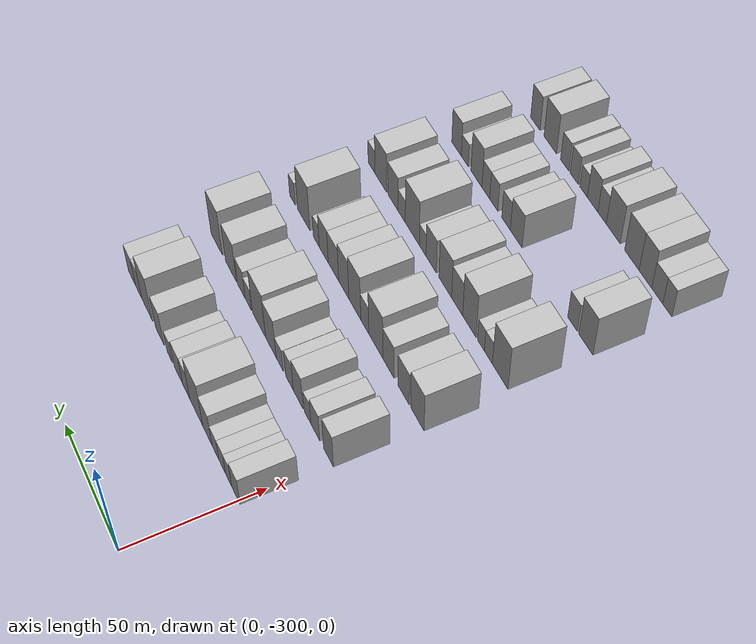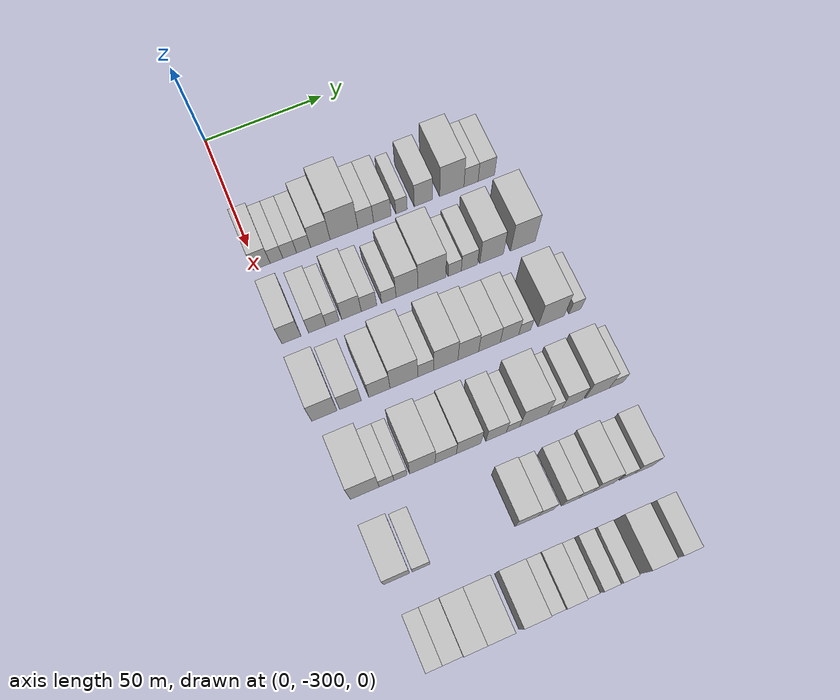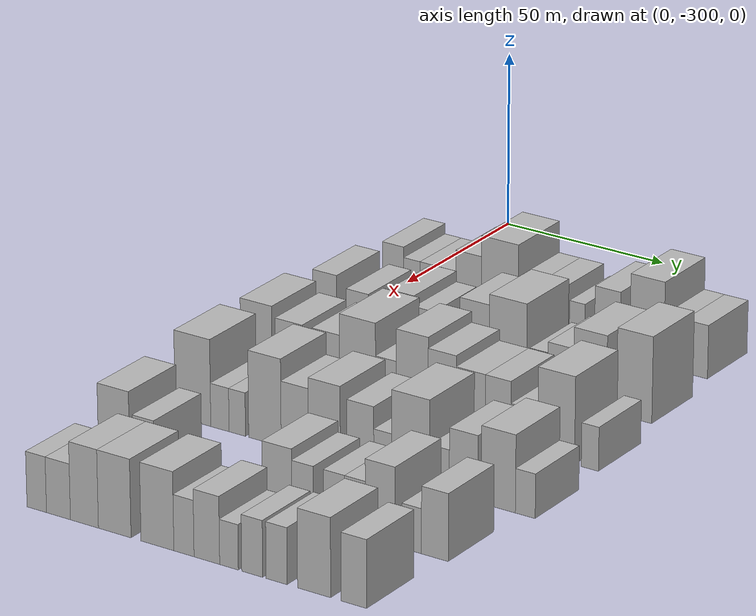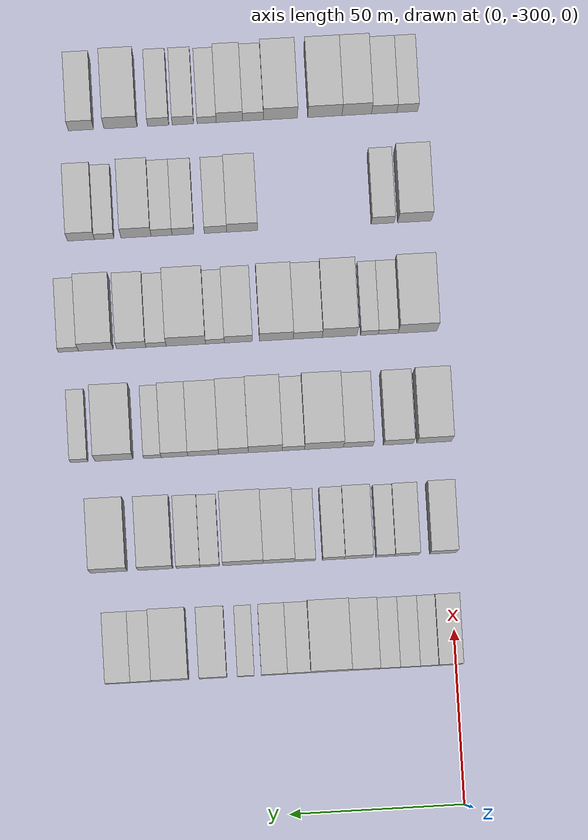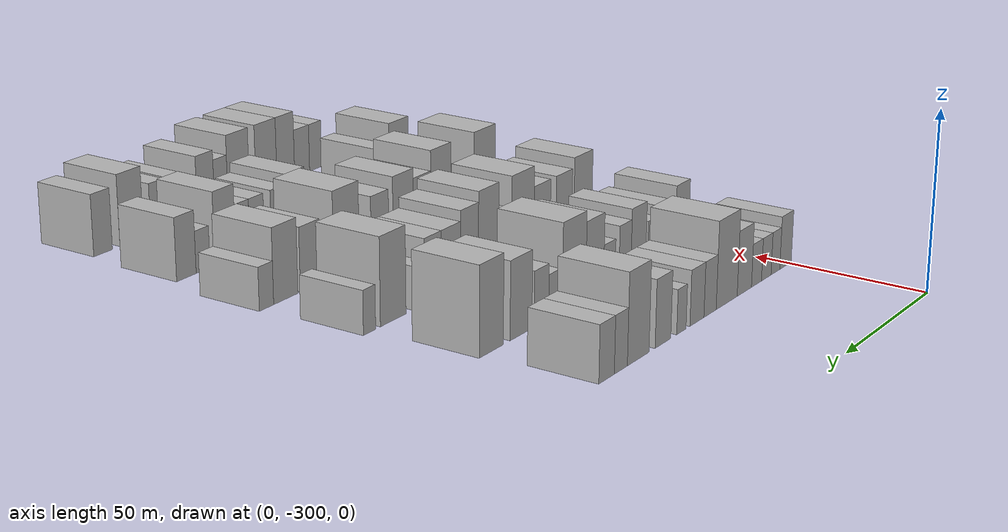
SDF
<sdf version="1.6">
 <world name="default">
  <model name="building_23">
   <static>1</static>
   <pose>50.0000 -297.9620 0 0.000000 0.000000 0.000000</pose>
   <link name="link">
    <pose>0 0 7.50 0 0 0</pose>
    <collision name="collision"><geometry><box><size>20.0000 6.9274 15.0000</size></box></geometry></collision>
    <visual name="visual">
     <cast_shadows>0</cast_shadows>
     <geometry><box><size>20.0000 6.9274 15.0000</size></box></geometry>
     <material>
      <script>
       <uri>model://HANNAS_wall/materials/scripts</uri>
       <uri>model://HANNAS_wall/materials/textures</uri>
       <name>vrc/HANNAS_wall</name>
      </script>
     </material>
    </visual>
   </link>
  </model>
  <model name="building_24">
   <static>1</static>
   <pose>50.0000 -291.8963 0 0.000000 0.000000 0.000000</pose>
   <link name="link">
    <pose>0 0 6.00 0 0 0</pose>
    <collision name="collision"><geometry><box><size>20.0000 5.2041 12.0000</size></box></geometry></collision>
    <visual name="visual">
     <cast_shadows>0</cast_shadows>
     <geometry><box><size>20.0000 5.2041 12.0000</size></box></geometry>
     <material>
      <script>
       <uri>model://HANNAS_wall/materials/scripts</uri>
       <uri>model://HANNAS_wall/materials/textures</uri>
       <name>vrc/HANNAS_wall</name>
      </script>
     </material>
    </visual>
   </link>
  </model>
  <model name="building_25">
   <static>1</static>
   <pose>50.0000 -286.4737 0 0.000000 0.000000 0.000000</pose>
   <link name="link">
    <pose>0 0 6.00 0 0 0</pose>
    <collision name="collision"><geometry><box><size>20.0000 5.6412 12.0000</size></box></geometry></collision>
    <visual name="visual">
     <cast_shadows>0</cast_shadows>
     <geometry><box><size>20.0000 5.6412 12.0000</size></box></geometry>
     <material>
      <script>
       <uri>model://HANNAS_wall/materials/scripts</uri>
       <uri>model://HANNAS_wall/materials/textures</uri>
       <name>vrc/HANNAS_wall</name>
      </script>
     </material>
    </visual>
   </link>
  </model>
  <model name="building_26">
   <static>1</static>
   <pose>50.0000 -280.7566 0 0.000000 0.000000 0.000000</pose>
   <link name="link">
    <pose>0 0 6.00 0 0 0</pose>
    <collision name="collision"><geometry><box><size>20.0000 5.7930 12.0000</size></box></geometry></collision>
    <visual name="visual">
     <cast_shadows>0</cast_shadows>
     <geometry><box><size>20.0000 5.7930 12.0000</size></box></geometry>
     <material>
      <script>
       <uri>model://HANNAS_wall/materials/scripts</uri>
       <uri>model://HANNAS_wall/materials/textures</uri>
       <name>vrc/HANNAS_wall</name>
      </script>
     </material>
    </visual>
   </link>
  </model>
  <model name="building_27">
   <static>1</static>
   <pose>50.0000 -273.8065 0 0.000000 0.000000 0.000000</pose>
   <link name="link">
    <pose>0 0 9.00 0 0 0</pose>
    <collision name="collision"><geometry><box><size>20.0000 8.1072 18.0000</size></box></geometry></collision>
    <visual name="visual">
     <cast_shadows>0</cast_shadows>
     <geometry><box><size>20.0000 8.1072 18.0000</size></box></geometry>
     <material>
      <script>
       <uri>model://HANNAS_wall/materials/scripts</uri>
       <uri>model://HANNAS_wall/materials/textures</uri>
       <name>vrc/HANNAS_wall</name>
      </script>
     </material>
    </visual>
   </link>
  </model>
  <model name="building_28">
   <static>1</static>
   <pose>50.0000 -263.9449 0 0.000000 0.000000 0.000000</pose>
   <link name="link">
    <pose>0 0 12.00 0 0 0</pose>
    <collision name="collision"><geometry><box><size>20.0000 11.6159 24.0000</size></box></geometry></collision>
    <visual name="visual">
     <cast_shadows>0</cast_shadows>
     <geometry><box><size>20.0000 11.6159 24.0000</size></box></geometry>
     <material>
      <script>
       <uri>model://HANNAS_wall/materials/scripts</uri>
       <uri>model://HANNAS_wall/materials/textures</uri>
       <name>vrc/HANNAS_wall</name>
      </script>
     </material>
    </visual>
   </link>
  </model>
  <model name="building_29">
   <static>1</static>
   <pose>50.0000 -254.8474 0 0.000000 0.000000 0.000000</pose>
   <link name="link">
    <pose>0 0 7.50 0 0 0</pose>
    <collision name="collision"><geometry><box><size>20.0000 6.5791 15.0000</size></box></geometry></collision>
    <visual name="visual">
     <cast_shadows>0</cast_shadows>
     <geometry><box><size>20.0000 6.5791 15.0000</size></box></geometry>
     <material>
      <script>
       <uri>model://HANNAS_wall/materials/scripts</uri>
       <uri>model://HANNAS_wall/materials/textures</uri>
       <name>vrc/HANNAS_wall</name>
      </script>
     </material>
    </visual>
   </link>
  </model>
  <model name="building_30">
   <static>1</static>
   <pose>50.0000 -247.8670 0 0.000000 0.000000 0.000000</pose>
   <link name="link">
    <pose>0 0 7.50 0 0 0</pose>
    <collision name="collision"><geometry><box><size>20.0000 7.3816 15.0000</size></box></geometry></collision>
    <visual name="visual">
     <cast_shadows>0</cast_shadows>
     <geometry><box><size>20.0000 7.3816 15.0000</size></box></geometry>
     <material>
      <script>
       <uri>model://HANNAS_wall/materials/scripts</uri>
       <uri>model://HANNAS_wall/materials/textures</uri>
       <name>vrc/HANNAS_wall</name>
      </script>
     </material>
    </visual>
   </link>
  </model>
  <model name="building_31">
   <static>1</static>
   <pose>50.0000 -239.7686 0 0.000000 0.000000 0.000000</pose>
   <link name="link">
    <pose>0 0 6.00 0 0 0</pose>
    <collision name="collision"><geometry><box><size>20.0000 4.8153 12.0000</size></box></geometry></collision>
    <visual name="visual">
     <cast_shadows>0</cast_shadows>
     <geometry><box><size>20.0000 4.8153 12.0000</size></box></geometry>
     <material>
      <script>
       <uri>model://HANNAS_wall/materials/scripts</uri>
       <uri>model://HANNAS_wall/materials/textures</uri>
       <name>vrc/HANNAS_wall</name>
      </script>
     </material>
    </visual>
   </link>
  </model>
  <model name="building_32">
   <static>1</static>
   <pose>50.0000 -230.4440 0 0.000000 0.000000 0.000000</pose>
   <link name="link">
    <pose>0 0 9.00 0 0 0</pose>
    <collision name="collision"><geometry><box><size>20.0000 7.8339 18.0000</size></box></geometry></collision>
    <visual name="visual">
     <cast_shadows>0</cast_shadows>
     <geometry><box><size>20.0000 7.8339 18.0000</size></box></geometry>
     <material>
      <script>
       <uri>model://HANNAS_wall/materials/scripts</uri>
       <uri>model://HANNAS_wall/materials/textures</uri>
       <name>vrc/HANNAS_wall</name>
      </script>
     </material>
    </visual>
   </link>
  </model>
  <model name="building_33">
   <static>1</static>
   <pose>50.0000 -218.3248 0 0.000000 0.000000 0.000000</pose>
   <link name="link">
    <pose>0 0 12.00 0 0 0</pose>
    <collision name="collision"><geometry><box><size>20.0000 10.4044 24.0000</size></box></geometry></collision>
    <visual name="visual">
     <cast_shadows>0</cast_shadows>
     <geometry><box><size>20.0000 10.4044 24.0000</size></box></geometry>
     <material>
      <script>
       <uri>model://HANNAS_wall/materials/scripts</uri>
       <uri>model://HANNAS_wall/materials/textures</uri>
       <name>vrc/HANNAS_wall</name>
      </script>
     </material>
    </visual>
   </link>
  </model>
  <model name="building_34">
   <static>1</static>
   <pose>50.0000 -210.0626 0 0.000000 0.000000 0.000000</pose>
   <link name="link">
    <pose>0 0 7.50 0 0 0</pose>
    <collision name="collision"><geometry><box><size>20.0000 6.1201 15.0000</size></box></geometry></collision>
    <visual name="visual">
     <cast_shadows>0</cast_shadows>
     <geometry><box><size>20.0000 6.1201 15.0000</size></box></geometry>
     <material>
      <script>
       <uri>model://HANNAS_wall/materials/scripts</uri>
       <uri>model://HANNAS_wall/materials/textures</uri>
       <name>vrc/HANNAS_wall</name>
      </script>
     </material>
    </visual>
   </link>
  </model>
  <model name="building_35">
   <static>1</static>
   <pose>50.0000 -203.4293 0 0.000000 0.000000 0.000000</pose>
   <link name="link">
    <pose>0 0 7.50 0 0 0</pose>
    <collision name="collision"><geometry><box><size>20.0000 7.1464 15.0000</size></box></geometry></collision>
    <visual name="visual">
     <cast_shadows>0</cast_shadows>
     <geometry><box><size>20.0000 7.1464 15.0000</size></box></geometry>
     <material>
      <script>
       <uri>model://HANNAS_wall/materials/scripts</uri>
       <uri>model://HANNAS_wall/materials/textures</uri>
       <name>vrc/HANNAS_wall</name>
      </script>
     </material>
    </visual>
   </link>
  </model>
  <model name="building_143">
   <static>1</static>
   <pose>82.0000 -298.0076 0 0.000000 0.000000 0.000000</pose>
   <link name="link">
    <pose>0 0 9.00 0 0 0</pose>
    <collision name="collision"><geometry><box><size>20.0000 7.6925 18.0000</size></box></geometry></collision>
    <visual name="visual">
     <cast_shadows>0</cast_shadows>
     <geometry><box><size>20.0000 7.6925 18.0000</size></box></geometry>
     <material>
      <script>
       <uri>model://HANNAS_wall/materials/scripts</uri>
       <uri>model://HANNAS_wall/materials/textures</uri>
       <name>vrc/HANNAS_wall</name>
      </script>
     </material>
    </visual>
   </link>
  </model>
  <model name="building_144">
   <static>1</static>
   <pose>82.0000 -287.6262 0 0.000000 0.000000 0.000000</pose>
   <link name="link">
    <pose>0 0 7.50 0 0 0</pose>
    <collision name="collision"><geometry><box><size>20.0000 7.0702 15.0000</size></box></geometry></collision>
    <visual name="visual">
     <cast_shadows>0</cast_shadows>
     <geometry><box><size>20.0000 7.0702 15.0000</size></box></geometry>
     <material>
      <script>
       <uri>model://HANNAS_wall/materials/scripts</uri>
       <uri>model://HANNAS_wall/materials/textures</uri>
       <name>vrc/HANNAS_wall</name>
      </script>
     </material>
    </visual>
   </link>
  </model>
  <model name="building_145">
   <static>1</static>
   <pose>82.0000 -281.4189 0 0.000000 0.000000 0.000000</pose>
   <link name="link">
    <pose>0 0 6.00 0 0 0</pose>
    <collision name="collision"><geometry><box><size>20.0000 5.3445 12.0000</size></box></geometry></collision>
    <visual name="visual">
     <cast_shadows>0</cast_shadows>
     <geometry><box><size>20.0000 5.3445 12.0000</size></box></geometry>
     <material>
      <script>
       <uri>model://HANNAS_wall/materials/scripts</uri>
       <uri>model://HANNAS_wall/materials/textures</uri>
       <name>vrc/HANNAS_wall</name>
      </script>
     </material>
    </visual>
   </link>
  </model>
  <model name="building_146">
   <static>1</static>
   <pose>82.0000 -273.7589 0 0.000000 0.000000 0.000000</pose>
   <link name="link">
    <pose>0 0 9.00 0 0 0</pose>
    <collision name="collision"><geometry><box><size>20.0000 7.9755 18.0000</size></box></geometry></collision>
    <visual name="visual">
     <cast_shadows>0</cast_shadows>
     <geometry><box><size>20.0000 7.9755 18.0000</size></box></geometry>
     <material>
      <script>
       <uri>model://HANNAS_wall/materials/scripts</uri>
       <uri>model://HANNAS_wall/materials/textures</uri>
       <name>vrc/HANNAS_wall</name>
      </script>
     </material>
    </visual>
   </link>
  </model>
  <model name="building_147">
   <static>1</static>
   <pose>82.0000 -266.6083 0 0.000000 0.000000 0.000000</pose>
   <link name="link">
    <pose>0 0 7.50 0 0 0</pose>
    <collision name="collision"><geometry><box><size>20.0000 6.3256 15.0000</size></box></geometry></collision>
    <visual name="visual">
     <cast_shadows>0</cast_shadows>
     <geometry><box><size>20.0000 6.3256 15.0000</size></box></geometry>
     <material>
      <script>
       <uri>model://HANNAS_wall/materials/scripts</uri>
       <uri>model://HANNAS_wall/materials/textures</uri>
       <name>vrc/HANNAS_wall</name>
      </script>
     </material>
    </visual>
   </link>
  </model>
  <model name="building_148">
   <static>1</static>
   <pose>82.0000 -258.4618 0 0.000000 0.000000 0.000000</pose>
   <link name="link">
    <pose>0 0 6.00 0 0 0</pose>
    <collision name="collision"><geometry><box><size>20.0000 5.9676 12.0000</size></box></geometry></collision>
    <visual name="visual">
     <cast_shadows>0</cast_shadows>
     <geometry><box><size>20.0000 5.9676 12.0000</size></box></geometry>
     <material>
      <script>
       <uri>model://HANNAS_wall/materials/scripts</uri>
       <uri>model://HANNAS_wall/materials/textures</uri>
       <name>vrc/HANNAS_wall</name>
      </script>
     </material>
    </visual>
   </link>
  </model>
  <model name="building_149">
   <static>1</static>
   <pose>82.0000 -250.9563 0 0.000000 0.000000 0.000000</pose>
   <link name="link">
    <pose>0 0 10.50 0 0 0</pose>
    <collision name="collision"><geometry><box><size>20.0000 9.0434 21.0000</size></box></geometry></collision>
    <visual name="visual">
     <cast_shadows>0</cast_shadows>
     <geometry><box><size>20.0000 9.0434 21.0000</size></box></geometry>
     <material>
      <script>
       <uri>model://HANNAS_wall/materials/scripts</uri>
       <uri>model://HANNAS_wall/materials/textures</uri>
       <name>vrc/HANNAS_wall</name>
      </script>
     </material>
    </visual>
   </link>
  </model>
  <model name="building_150">
   <static>1</static>
   <pose>82.0000 -240.6890 0 0.000000 0.000000 0.000000</pose>
   <link name="link">
    <pose>0 0 12.00 0 0 0</pose>
    <collision name="collision"><geometry><box><size>20.0000 11.4912 24.0000</size></box></geometry></collision>
    <visual name="visual">
     <cast_shadows>0</cast_shadows>
     <geometry><box><size>20.0000 11.4912 24.0000</size></box></geometry>
     <material>
      <script>
       <uri>model://HANNAS_wall/materials/scripts</uri>
       <uri>model://HANNAS_wall/materials/textures</uri>
       <name>vrc/HANNAS_wall</name>
      </script>
     </material>
    </visual>
   </link>
  </model>
  <model name="building_151">
   <static>1</static>
   <pose>82.0000 -231.1967 0 0.000000 0.000000 0.000000</pose>
   <link name="link">
    <pose>0 0 6.00 0 0 0</pose>
    <collision name="collision"><geometry><box><size>20.0000 5.4934 12.0000</size></box></geometry></collision>
    <visual name="visual">
     <cast_shadows>0</cast_shadows>
     <geometry><box><size>20.0000 5.4934 12.0000</size></box></geometry>
     <material>
      <script>
       <uri>model://HANNAS_wall/materials/scripts</uri>
       <uri>model://HANNAS_wall/materials/textures</uri>
       <name>vrc/HANNAS_wall</name>
      </script>
     </material>
    </visual>
   </link>
  </model>
  <model name="building_152">
   <static>1</static>
   <pose>82.0000 -225.0478 0 0.000000 0.000000 0.000000</pose>
   <link name="link">
    <pose>0 0 7.50 0 0 0</pose>
    <collision name="collision"><geometry><box><size>20.0000 6.8043 15.0000</size></box></geometry></collision>
    <visual name="visual">
     <cast_shadows>0</cast_shadows>
     <geometry><box><size>20.0000 6.8043 15.0000</size></box></geometry>
     <material>
      <script>
       <uri>model://HANNAS_wall/materials/scripts</uri>
       <uri>model://HANNAS_wall/materials/textures</uri>
       <name>vrc/HANNAS_wall</name>
      </script>
     </material>
    </visual>
   </link>
  </model>
  <model name="building_153">
   <static>1</static>
   <pose>82.0000 -215.6510 0 0.000000 0.000000 0.000000</pose>
   <link name="link">
    <pose>0 0 10.50 0 0 0</pose>
    <collision name="collision"><geometry><box><size>20.0000 9.9894 21.0000</size></box></geometry></collision>
    <visual name="visual">
     <cast_shadows>0</cast_shadows>
     <geometry><box><size>20.0000 9.9894 21.0000</size></box></geometry>
     <material>
      <script>
       <uri>model://HANNAS_wall/materials/scripts</uri>
       <uri>model://HANNAS_wall/materials/textures</uri>
       <name>vrc/HANNAS_wall</name>
      </script>
     </material>
    </visual>
   </link>
  </model>
  <model name="building_154">
   <static>1</static>
   <pose>82.0000 -202.3772 0 0.000000 0.000000 0.000000</pose>
   <link name="link">
    <pose>0 0 12.00 0 0 0</pose>
    <collision name="collision"><geometry><box><size>20.0000 10.5583 24.0000</size></box></geometry></collision>
    <visual name="visual">
     <cast_shadows>0</cast_shadows>
     <geometry><box><size>20.0000 10.5583 24.0000</size></box></geometry>
     <material>
      <script>
       <uri>model://HANNAS_wall/materials/scripts</uri>
       <uri>model://HANNAS_wall/materials/textures</uri>
       <name>vrc/HANNAS_wall</name>
      </script>
     </material>
    </visual>
   </link>
  </model>
  <model name="building_268">
   <static>1</static>
   <pose>114.0000 -297.3556 0 0.000000 0.000000 0.000000</pose>
   <link name="link">
    <pose>0 0 10.50 0 0 0</pose>
    <collision name="collision"><geometry><box><size>20.0000 9.9797 21.0000</size></box></geometry></collision>
    <visual name="visual">
     <cast_shadows>0</cast_shadows>
     <geometry><box><size>20.0000 9.9797 21.0000</size></box></geometry>
     <material>
      <script>
       <uri>model://HANNAS_wall/materials/scripts</uri>
       <uri>model://HANNAS_wall/materials/textures</uri>
       <name>vrc/HANNAS_wall</name>
      </script>
     </material>
    </visual>
   </link>
  </model>
  <model name="building_269">
   <static>1</static>
   <pose>114.0000 -287.0951 0 0.000000 0.000000 0.000000</pose>
   <link name="link">
    <pose>0 0 9.00 0 0 0</pose>
    <collision name="collision"><geometry><box><size>20.0000 8.5413 18.0000</size></box></geometry></collision>
    <visual name="visual">
     <cast_shadows>0</cast_shadows>
     <geometry><box><size>20.0000 8.5413 18.0000</size></box></geometry>
     <material>
      <script>
       <uri>model://HANNAS_wall/materials/scripts</uri>
       <uri>model://HANNAS_wall/materials/textures</uri>
       <name>vrc/HANNAS_wall</name>
      </script>
     </material>
    </visual>
   </link>
  </model>
  <model name="building_270">
   <static>1</static>
   <pose>114.0000 -275.5654 0 0.000000 0.000000 0.000000</pose>
   <link name="link">
    <pose>0 0 9.00 0 0 0</pose>
    <collision name="collision"><geometry><box><size>20.0000 8.5182 18.0000</size></box></geometry></collision>
    <visual name="visual">
     <cast_shadows>0</cast_shadows>
     <geometry><box><size>20.0000 8.5182 18.0000</size></box></geometry>
     <material>
      <script>
       <uri>model://HANNAS_wall/materials/scripts</uri>
       <uri>model://HANNAS_wall/materials/textures</uri>
       <name>vrc/HANNAS_wall</name>
      </script>
     </material>
    </visual>
   </link>
  </model>
  <model name="building_271">
   <static>1</static>
   <pose>114.0000 -265.7156 0 0.000000 0.000000 0.000000</pose>
   <link name="link">
    <pose>0 0 12.00 0 0 0</pose>
    <collision name="collision"><geometry><box><size>20.0000 11.1815 24.0000</size></box></geometry></collision>
    <visual name="visual">
     <cast_shadows>0</cast_shadows>
     <geometry><box><size>20.0000 11.1815 24.0000</size></box></geometry>
     <material>
      <script>
       <uri>model://HANNAS_wall/materials/scripts</uri>
       <uri>model://HANNAS_wall/materials/textures</uri>
       <name>vrc/HANNAS_wall</name>
      </script>
     </material>
    </visual>
   </link>
  </model>
  <model name="building_272">
   <static>1</static>
   <pose>114.0000 -256.9331 0 0.000000 0.000000 0.000000</pose>
   <link name="link">
    <pose>0 0 7.50 0 0 0</pose>
    <collision name="collision"><geometry><box><size>20.0000 6.3836 15.0000</size></box></geometry></collision>
    <visual name="visual">
     <cast_shadows>0</cast_shadows>
     <geometry><box><size>20.0000 6.3836 15.0000</size></box></geometry>
     <material>
      <script>
       <uri>model://HANNAS_wall/materials/scripts</uri>
       <uri>model://HANNAS_wall/materials/textures</uri>
       <name>vrc/HANNAS_wall</name>
      </script>
     </material>
    </visual>
   </link>
  </model>
  <model name="building_273">
   <static>1</static>
   <pose>114.0000 -248.8616 0 0.000000 0.000000 0.000000</pose>
   <link name="link">
    <pose>0 0 12.00 0 0 0</pose>
    <collision name="collision"><geometry><box><size>20.0000 9.7594 24.0000</size></box></geometry></collision>
    <visual name="visual">
     <cast_shadows>0</cast_shadows>
     <geometry><box><size>20.0000 9.7594 24.0000</size></box></geometry>
     <material>
      <script>
       <uri>model://HANNAS_wall/materials/scripts</uri>
       <uri>model://HANNAS_wall/materials/textures</uri>
       <name>vrc/HANNAS_wall</name>
      </script>
     </material>
    </visual>
   </link>
  </model>
  <model name="building_274">
   <static>1</static>
   <pose>114.0000 -239.7584 0 0.000000 0.000000 0.000000</pose>
   <link name="link">
    <pose>0 0 10.50 0 0 0</pose>
    <collision name="collision"><geometry><box><size>20.0000 8.4470 21.0000</size></box></geometry></collision>
    <visual name="visual">
     <cast_shadows>0</cast_shadows>
     <geometry><box><size>20.0000 8.4470 21.0000</size></box></geometry>
     <material>
      <script>
       <uri>model://HANNAS_wall/materials/scripts</uri>
       <uri>model://HANNAS_wall/materials/textures</uri>
       <name>vrc/HANNAS_wall</name>
      </script>
     </material>
    </visual>
   </link>
  </model>
  <model name="building_275">
   <static>1</static>
   <pose>114.0000 -231.1244 0 0.000000 0.000000 0.000000</pose>
   <link name="link">
    <pose>0 0 9.00 0 0 0</pose>
    <collision name="collision"><geometry><box><size>20.0000 8.8209 18.0000</size></box></geometry></collision>
    <visual name="visual">
     <cast_shadows>0</cast_shadows>
     <geometry><box><size>20.0000 8.8209 18.0000</size></box></geometry>
     <material>
      <script>
       <uri>model://HANNAS_wall/materials/scripts</uri>
       <uri>model://HANNAS_wall/materials/textures</uri>
       <name>vrc/HANNAS_wall</name>
      </script>
     </material>
    </visual>
   </link>
  </model>
  <model name="building_276">
   <static>1</static>
   <pose>114.0000 -222.8920 0 0.000000 0.000000 0.000000</pose>
   <link name="link">
    <pose>0 0 9.00 0 0 0</pose>
    <collision name="collision"><geometry><box><size>20.0000 7.6440 18.0000</size></box></geometry></collision>
    <visual name="visual">
     <cast_shadows>0</cast_shadows>
     <geometry><box><size>20.0000 7.6440 18.0000</size></box></geometry>
     <material>
      <script>
       <uri>model://HANNAS_wall/materials/scripts</uri>
       <uri>model://HANNAS_wall/materials/textures</uri>
       <name>vrc/HANNAS_wall</name>
      </script>
     </material>
    </visual>
   </link>
  </model>
  <model name="building_277">
   <static>1</static>
   <pose>114.0000 -216.5443 0 0.000000 0.000000 0.000000</pose>
   <link name="link">
    <pose>0 0 6.00 0 0 0</pose>
    <collision name="collision"><geometry><box><size>20.0000 5.0513 12.0000</size></box></geometry></collision>
    <visual name="visual">
     <cast_shadows>0</cast_shadows>
     <geometry><box><size>20.0000 5.0513 12.0000</size></box></geometry>
     <material>
      <script>
       <uri>model://HANNAS_wall/materials/scripts</uri>
       <uri>model://HANNAS_wall/materials/textures</uri>
       <name>vrc/HANNAS_wall</name>
      </script>
     </material>
    </visual>
   </link>
  </model>
  <model name="building_278">
   <static>1</static>
   <pose>114.0000 -205.5445 0 0.000000 0.000000 0.000000</pose>
   <link name="link">
    <pose>0 0 12.00 0 0 0</pose>
    <collision name="collision"><geometry><box><size>20.0000 10.9483 24.0000</size></box></geometry></collision>
    <visual name="visual">
     <cast_shadows>0</cast_shadows>
     <geometry><box><size>20.0000 10.9483 24.0000</size></box></geometry>
     <material>
      <script>
       <uri>model://HANNAS_wall/materials/scripts</uri>
       <uri>model://HANNAS_wall/materials/textures</uri>
       <name>vrc/HANNAS_wall</name>
      </script>
     </material>
    </visual>
   </link>
  </model>
  <model name="building_279">
   <static>1</static>
   <pose>114.0000 -195.5389 0 0.000000 0.000000 0.000000</pose>
   <link name="link">
    <pose>0 0 6.00 0 0 0</pose>
    <collision name="collision"><geometry><box><size>20.0000 5.0629 12.0000</size></box></geometry></collision>
    <visual name="visual">
     <cast_shadows>0</cast_shadows>
     <geometry><box><size>20.0000 5.0629 12.0000</size></box></geometry>
     <material>
      <script>
       <uri>model://HANNAS_wall/materials/scripts</uri>
       <uri>model://HANNAS_wall/materials/textures</uri>
       <name>vrc/HANNAS_wall</name>
      </script>
     </material>
    </visual>
   </link>
  </model>
  <model name="building_383">
   <static>1</static>
   <pose>146.0000 -294.4666 0 0.000000 0.000000 0.000000</pose>
   <link name="link">
    <pose>0 0 12.00 0 0 0</pose>
    <collision name="collision"><geometry><box><size>20.0000 11.1576 24.0000</size></box></geometry></collision>
    <visual name="visual">
     <cast_shadows>0</cast_shadows>
     <geometry><box><size>20.0000 11.1576 24.0000</size></box></geometry>
     <material>
      <script>
       <uri>model://HANNAS_wall/materials/scripts</uri>
       <uri>model://HANNAS_wall/materials/textures</uri>
       <name>vrc/HANNAS_wall</name>
      </script>
     </material>
    </visual>
   </link>
  </model>
  <model name="building_384">
   <static>1</static>
   <pose>146.0000 -286.0366 0 0.000000 0.000000 0.000000</pose>
   <link name="link">
    <pose>0 0 6.00 0 0 0</pose>
    <collision name="collision"><geometry><box><size>20.0000 5.7023 12.0000</size></box></geometry></collision>
    <visual name="visual">
     <cast_shadows>0</cast_shadows>
     <geometry><box><size>20.0000 5.7023 12.0000</size></box></geometry>
     <material>
      <script>
       <uri>model://HANNAS_wall/materials/scripts</uri>
       <uri>model://HANNAS_wall/materials/textures</uri>
       <name>vrc/HANNAS_wall</name>
      </script>
     </material>
    </visual>
   </link>
  </model>
  <model name="building_385">
   <static>1</static>
   <pose>146.0000 -280.6376 0 0.000000 0.000000 0.000000</pose>
   <link name="link">
    <pose>0 0 6.00 0 0 0</pose>
    <collision name="collision"><geometry><box><size>20.0000 5.0958 12.0000</size></box></geometry></collision>
    <visual name="visual">
     <cast_shadows>0</cast_shadows>
     <geometry><box><size>20.0000 5.0958 12.0000</size></box></geometry>
     <material>
      <script>
       <uri>model://HANNAS_wall/materials/scripts</uri>
       <uri>model://HANNAS_wall/materials/textures</uri>
       <name>vrc/HANNAS_wall</name>
      </script>
     </material>
    </visual>
   </link>
  </model>
  <model name="building_386">
   <static>1</static>
   <pose>146.0000 -272.0803 0 0.000000 0.000000 0.000000</pose>
   <link name="link">
    <pose>0 0 12.00 0 0 0</pose>
    <collision name="collision"><geometry><box><size>20.0000 10.0187 24.0000</size></box></geometry></collision>
    <visual name="visual">
     <cast_shadows>0</cast_shadows>
     <geometry><box><size>20.0000 10.0187 24.0000</size></box></geometry>
     <material>
      <script>
       <uri>model://HANNAS_wall/materials/scripts</uri>
       <uri>model://HANNAS_wall/materials/textures</uri>
       <name>vrc/HANNAS_wall</name>
      </script>
     </material>
    </visual>
   </link>
  </model>
  <model name="building_387">
   <static>1</static>
   <pose>146.0000 -262.9037 0 0.000000 0.000000 0.000000</pose>
   <link name="link">
    <pose>0 0 9.00 0 0 0</pose>
    <collision name="collision"><geometry><box><size>20.0000 8.3347 18.0000</size></box></geometry></collision>
    <visual name="visual">
     <cast_shadows>0</cast_shadows>
     <geometry><box><size>20.0000 8.3347 18.0000</size></box></geometry>
     <material>
      <script>
       <uri>model://HANNAS_wall/materials/scripts</uri>
       <uri>model://HANNAS_wall/materials/textures</uri>
       <name>vrc/HANNAS_wall</name>
      </script>
     </material>
    </visual>
   </link>
  </model>
  <model name="building_388">
   <static>1</static>
   <pose>146.0000 -253.8765 0 0.000000 0.000000 0.000000</pose>
   <link name="link">
    <pose>0 0 10.50 0 0 0</pose>
    <collision name="collision"><geometry><box><size>20.0000 9.7196 21.0000</size></box></geometry></collision>
    <visual name="visual">
     <cast_shadows>0</cast_shadows>
     <geometry><box><size>20.0000 9.7196 21.0000</size></box></geometry>
     <material>
      <script>
       <uri>model://HANNAS_wall/materials/scripts</uri>
       <uri>model://HANNAS_wall/materials/textures</uri>
       <name>vrc/HANNAS_wall</name>
      </script>
     </material>
    </visual>
   </link>
  </model>
  <model name="building_389">
   <static>1</static>
   <pose>146.0000 -242.9611 0 0.000000 0.000000 0.000000</pose>
   <link name="link">
    <pose>0 0 9.00 0 0 0</pose>
    <collision name="collision"><geometry><box><size>20.0000 8.1113 18.0000</size></box></geometry></collision>
    <visual name="visual">
     <cast_shadows>0</cast_shadows>
     <geometry><box><size>20.0000 8.1113 18.0000</size></box></geometry>
     <material>
      <script>
       <uri>model://HANNAS_wall/materials/scripts</uri>
       <uri>model://HANNAS_wall/materials/textures</uri>
       <name>vrc/HANNAS_wall</name>
      </script>
     </material>
    </visual>
   </link>
  </model>
  <model name="building_390">
   <static>1</static>
   <pose>146.0000 -236.2172 0 0.000000 0.000000 0.000000</pose>
   <link name="link">
    <pose>0 0 6.00 0 0 0</pose>
    <collision name="collision"><geometry><box><size>20.0000 5.3765 12.0000</size></box></geometry></collision>
    <visual name="visual">
     <cast_shadows>0</cast_shadows>
     <geometry><box><size>20.0000 5.3765 12.0000</size></box></geometry>
     <material>
      <script>
       <uri>model://HANNAS_wall/materials/scripts</uri>
       <uri>model://HANNAS_wall/materials/textures</uri>
       <name>vrc/HANNAS_wall</name>
      </script>
     </material>
    </visual>
   </link>
  </model>
  <model name="building_391">
   <static>1</static>
   <pose>146.0000 -227.8656 0 0.000000 0.000000 0.000000</pose>
   <link name="link">
    <pose>0 0 12.00 0 0 0</pose>
    <collision name="collision"><geometry><box><size>20.0000 11.3267 24.0000</size></box></geometry></collision>
    <visual name="visual">
     <cast_shadows>0</cast_shadows>
     <geometry><box><size>20.0000 11.3267 24.0000</size></box></geometry>
     <material>
      <script>
       <uri>model://HANNAS_wall/materials/scripts</uri>
       <uri>model://HANNAS_wall/materials/textures</uri>
       <name>vrc/HANNAS_wall</name>
      </script>
     </material>
    </visual>
   </link>
  </model>
  <model name="building_392">
   <static>1</static>
   <pose>146.0000 -219.3016 0 0.000000 0.000000 0.000000</pose>
   <link name="link">
    <pose>0 0 6.00 0 0 0</pose>
    <collision name="collision"><geometry><box><size>20.0000 5.8013 12.0000</size></box></geometry></collision>
    <visual name="visual">
     <cast_shadows>0</cast_shadows>
     <geometry><box><size>20.0000 5.8013 12.0000</size></box></geometry>
     <material>
      <script>
       <uri>model://HANNAS_wall/materials/scripts</uri>
       <uri>model://HANNAS_wall/materials/textures</uri>
       <name>vrc/HANNAS_wall</name>
      </script>
     </material>
    </visual>
   </link>
  </model>
  <model name="building_393">
   <static>1</static>
   <pose>146.0000 -212.1735 0 0.000000 0.000000 0.000000</pose>
   <link name="link">
    <pose>0 0 9.00 0 0 0</pose>
    <collision name="collision"><geometry><box><size>20.0000 8.4549 18.0000</size></box></geometry></collision>
    <visual name="visual">
     <cast_shadows>0</cast_shadows>
     <geometry><box><size>20.0000 8.4549 18.0000</size></box></geometry>
     <material>
      <script>
       <uri>model://HANNAS_wall/materials/scripts</uri>
       <uri>model://HANNAS_wall/materials/textures</uri>
       <name>vrc/HANNAS_wall</name>
      </script>
     </material>
    </visual>
   </link>
  </model>
  <model name="building_394">
   <static>1</static>
   <pose>146.0000 -201.9607 0 0.000000 0.000000 0.000000</pose>
   <link name="link">
    <pose>0 0 10.50 0 0 0</pose>
    <collision name="collision"><geometry><box><size>20.0000 9.9706 21.0000</size></box></geometry></collision>
    <visual name="visual">
     <cast_shadows>0</cast_shadows>
     <geometry><box><size>20.0000 9.9706 21.0000</size></box></geometry>
     <material>
      <script>
       <uri>model://HANNAS_wall/materials/scripts</uri>
       <uri>model://HANNAS_wall/materials/textures</uri>
       <name>vrc/HANNAS_wall</name>
      </script>
     </material>
    </visual>
   </link>
  </model>
  <model name="building_395">
   <static>1</static>
   <pose>146.0000 -194.0923 0 0.000000 0.000000 0.000000</pose>
   <link name="link">
    <pose>0 0 6.00 0 0 0</pose>
    <collision name="collision"><geometry><box><size>20.0000 5.7662 12.0000</size></box></geometry></collision>
    <visual name="visual">
     <cast_shadows>0</cast_shadows>
     <geometry><box><size>20.0000 5.7662 12.0000</size></box></geometry>
     <material>
      <script>
       <uri>model://HANNAS_wall/materials/scripts</uri>
       <uri>model://HANNAS_wall/materials/textures</uri>
       <name>vrc/HANNAS_wall</name>
      </script>
     </material>
    </visual>
   </link>
  </model>
  <model name="building_506">
   <static>1</static>
   <pose>178.0000 -295.5136 0 0.000000 0.000000 0.000000</pose>
   <link name="link">
    <pose>0 0 10.50 0 0 0</pose>
    <collision name="collision"><geometry><box><size>20.0000 9.6950 21.0000</size></box></geometry></collision>
    <visual name="visual">
     <cast_shadows>0</cast_shadows>
     <geometry><box><size>20.0000 9.6950 21.0000</size></box></geometry>
     <material>
      <script>
       <uri>model://HANNAS_wall/materials/scripts</uri>
       <uri>model://HANNAS_wall/materials/textures</uri>
       <name>vrc/HANNAS_wall</name>
      </script>
     </material>
    </visual>
   </link>
  </model>
  <model name="building_507">
   <static>1</static>
   <pose>178.0000 -286.3545 0 0.000000 0.000000 0.000000</pose>
   <link name="link">
    <pose>0 0 7.50 0 0 0</pose>
    <collision name="collision"><geometry><box><size>20.0000 6.6233 15.0000</size></box></geometry></collision>
    <visual name="visual">
     <cast_shadows>0</cast_shadows>
     <geometry><box><size>20.0000 6.6233 15.0000</size></box></geometry>
     <material>
      <script>
       <uri>model://HANNAS_wall/materials/scripts</uri>
       <uri>model://HANNAS_wall/materials/textures</uri>
       <name>vrc/HANNAS_wall</name>
      </script>
     </material>
    </visual>
   </link>
  </model>
  <model name="building_508">
   <static>1</static>
   <pose>178.0000 -245.8073 0 0.000000 0.000000 0.000000</pose>
   <link name="link">
    <pose>0 0 9.00 0 0 0</pose>
    <collision name="collision"><geometry><box><size>20.0000 8.8237 18.0000</size></box></geometry></collision>
    <visual name="visual">
     <cast_shadows>0</cast_shadows>
     <geometry><box><size>20.0000 8.8237 18.0000</size></box></geometry>
     <material>
      <script>
       <uri>model://HANNAS_wall/materials/scripts</uri>
       <uri>model://HANNAS_wall/materials/textures</uri>
       <name>vrc/HANNAS_wall</name>
      </script>
     </material>
    </visual>
   </link>
  </model>
  <model name="building_509">
   <static>1</static>
   <pose>178.0000 -238.1602 0 0.000000 0.000000 0.000000</pose>
   <link name="link">
    <pose>0 0 7.50 0 0 0</pose>
    <collision name="collision"><geometry><box><size>20.0000 6.4706 15.0000</size></box></geometry></collision>
    <visual name="visual">
     <cast_shadows>0</cast_shadows>
     <geometry><box><size>20.0000 6.4706 15.0000</size></box></geometry>
     <material>
      <script>
       <uri>model://HANNAS_wall/materials/scripts</uri>
       <uri>model://HANNAS_wall/materials/textures</uri>
       <name>vrc/HANNAS_wall</name>
      </script>
     </material>
    </visual>
   </link>
  </model>
  <model name="building_510">
   <static>1</static>
   <pose>178.0000 -228.7891 0 0.000000 0.000000 0.000000</pose>
   <link name="link">
    <pose>0 0 7.50 0 0 0</pose>
    <collision name="collision"><geometry><box><size>20.0000 6.2715 15.0000</size></box></geometry></collision>
    <visual name="visual">
     <cast_shadows>0</cast_shadows>
     <geometry><box><size>20.0000 6.2715 15.0000</size></box></geometry>
     <material>
      <script>
       <uri>model://HANNAS_wall/materials/scripts</uri>
       <uri>model://HANNAS_wall/materials/textures</uri>
       <name>vrc/HANNAS_wall</name>
      </script>
     </material>
    </visual>
   </link>
  </model>
  <model name="building_511">
   <static>1</static>
   <pose>178.0000 -222.6332 0 0.000000 0.000000 0.000000</pose>
   <link name="link">
    <pose>0 0 7.50 0 0 0</pose>
    <collision name="collision"><geometry><box><size>20.0000 6.0403 15.0000</size></box></geometry></collision>
    <visual name="visual">
     <cast_shadows>0</cast_shadows>
     <geometry><box><size>20.0000 6.0403 15.0000</size></box></geometry>
     <material>
      <script>
       <uri>model://HANNAS_wall/materials/scripts</uri>
       <uri>model://HANNAS_wall/materials/textures</uri>
       <name>vrc/HANNAS_wall</name>
      </script>
     </material>
    </visual>
   </link>
  </model>
  <model name="building_512">
   <static>1</static>
   <pose>178.0000 -215.2606 0 0.000000 0.000000 0.000000</pose>
   <link name="link">
    <pose>0 0 10.50 0 0 0</pose>
    <collision name="collision"><geometry><box><size>20.0000 8.7047 21.0000</size></box></geometry></collision>
    <visual name="visual">
     <cast_shadows>0</cast_shadows>
     <geometry><box><size>20.0000 8.7047 21.0000</size></box></geometry>
     <material>
      <script>
       <uri>model://HANNAS_wall/materials/scripts</uri>
       <uri>model://HANNAS_wall/materials/textures</uri>
       <name>vrc/HANNAS_wall</name>
      </script>
     </material>
    </visual>
   </link>
  </model>
  <model name="building_513">
   <static>1</static>
   <pose>178.0000 -206.0849 0 0.000000 0.000000 0.000000</pose>
   <link name="link">
    <pose>0 0 6.00 0 0 0</pose>
    <collision name="collision"><geometry><box><size>20.0000 5.6467 12.0000</size></box></geometry></collision>
    <visual name="visual">
     <cast_shadows>0</cast_shadows>
     <geometry><box><size>20.0000 5.6467 12.0000</size></box></geometry>
     <material>
      <script>
       <uri>model://HANNAS_wall/materials/scripts</uri>
       <uri>model://HANNAS_wall/materials/textures</uri>
       <name>vrc/HANNAS_wall</name>
      </script>
     </material>
    </visual>
   </link>
  </model>
  <model name="building_514">
   <static>1</static>
   <pose>178.0000 -199.3701 0 0.000000 0.000000 0.000000</pose>
   <link name="link">
    <pose>0 0 9.00 0 0 0</pose>
    <collision name="collision"><geometry><box><size>20.0000 7.7830 18.0000</size></box></geometry></collision>
    <visual name="visual">
     <cast_shadows>0</cast_shadows>
     <geometry><box><size>20.0000 7.7830 18.0000</size></box></geometry>
     <material>
      <script>
       <uri>model://HANNAS_wall/materials/scripts</uri>
       <uri>model://HANNAS_wall/materials/textures</uri>
       <name>vrc/HANNAS_wall</name>
      </script>
     </material>
    </visual>
   </link>
  </model>
  <model name="building_616">
   <static>1</static>
   <pose>210.0000 -295.3305 0 0.000000 0.000000 0.000000</pose>
   <link name="link">
    <pose>0 0 7.50 0 0 0</pose>
    <collision name="collision"><geometry><box><size>20.0000 6.0073 15.0000</size></box></geometry></collision>
    <visual name="visual">
     <cast_shadows>0</cast_shadows>
     <geometry><box><size>20.0000 6.0073 15.0000</size></box></geometry>
     <material>
      <script>
       <uri>model://HANNAS_wall/materials/scripts</uri>
       <uri>model://HANNAS_wall/materials/textures</uri>
       <name>vrc/HANNAS_wall</name>
      </script>
     </material>
    </visual>
   </link>
  </model>
  <model name="building_617">
   <static>1</static>
   <pose>210.0000 -288.6546 0 0.000000 0.000000 0.000000</pose>
   <link name="link">
    <pose>0 0 7.50 0 0 0</pose>
    <collision name="collision"><geometry><box><size>20.0000 7.3446 15.0000</size></box></geometry></collision>
    <visual name="visual">
     <cast_shadows>0</cast_shadows>
     <geometry><box><size>20.0000 7.3446 15.0000</size></box></geometry>
     <material>
      <script>
       <uri>model://HANNAS_wall/materials/scripts</uri>
       <uri>model://HANNAS_wall/materials/textures</uri>
       <name>vrc/HANNAS_wall</name>
      </script>
     </material>
    </visual>
   </link>
  </model>
  <model name="building_618">
   <static>1</static>
   <pose>210.0000 -280.7211 0 0.000000 0.000000 0.000000</pose>
   <link name="link">
    <pose>0 0 10.50 0 0 0</pose>
    <collision name="collision"><geometry><box><size>20.0000 8.5224 21.0000</size></box></geometry></collision>
    <visual name="visual">
     <cast_shadows>0</cast_shadows>
     <geometry><box><size>20.0000 8.5224 21.0000</size></box></geometry>
     <material>
      <script>
       <uri>model://HANNAS_wall/materials/scripts</uri>
       <uri>model://HANNAS_wall/materials/textures</uri>
       <name>vrc/HANNAS_wall</name>
      </script>
     </material>
    </visual>
   </link>
  </model>
  <model name="building_619">
   <static>1</static>
   <pose>210.0000 -271.5176 0 0.000000 0.000000 0.000000</pose>
   <link name="link">
    <pose>0 0 10.50 0 0 0</pose>
    <collision name="collision"><geometry><box><size>20.0000 9.8846 21.0000</size></box></geometry></collision>
    <visual name="visual">
     <cast_shadows>0</cast_shadows>
     <geometry><box><size>20.0000 9.8846 21.0000</size></box></geometry>
     <material>
      <script>
       <uri>model://HANNAS_wall/materials/scripts</uri>
       <uri>model://HANNAS_wall/materials/textures</uri>
       <name>vrc/HANNAS_wall</name>
      </script>
     </material>
    </visual>
   </link>
  </model>
  <model name="building_620">
   <static>1</static>
   <pose>210.0000 -258.6503 0 0.000000 0.000000 0.000000</pose>
   <link name="link">
    <pose>0 0 10.50 0 0 0</pose>
    <collision name="collision"><geometry><box><size>20.0000 9.8500 21.0000</size></box></geometry></collision>
    <visual name="visual">
     <cast_shadows>0</cast_shadows>
     <geometry><box><size>20.0000 9.8500 21.0000</size></box></geometry>
     <material>
      <script>
       <uri>model://HANNAS_wall/materials/scripts</uri>
       <uri>model://HANNAS_wall/materials/textures</uri>
       <name>vrc/HANNAS_wall</name>
      </script>
     </material>
    </visual>
   </link>
  </model>
  <model name="building_621">
   <static>1</static>
   <pose>210.0000 -250.7199 0 0.000000 0.000000 0.000000</pose>
   <link name="link">
    <pose>0 0 7.50 0 0 0</pose>
    <collision name="collision"><geometry><box><size>20.0000 6.0108 15.0000</size></box></geometry></collision>
    <visual name="visual">
     <cast_shadows>0</cast_shadows>
     <geometry><box><size>20.0000 6.0108 15.0000</size></box></geometry>
     <material>
      <script>
       <uri>model://HANNAS_wall/materials/scripts</uri>
       <uri>model://HANNAS_wall/materials/textures</uri>
       <name>vrc/HANNAS_wall</name>
      </script>
     </material>
    </visual>
   </link>
  </model>
  <model name="building_622">
   <static>1</static>
   <pose>210.0000 -243.9203 0 0.000000 0.000000 0.000000</pose>
   <link name="link">
    <pose>0 0 9.00 0 0 0</pose>
    <collision name="collision"><geometry><box><size>20.0000 7.5884 18.0000</size></box></geometry></collision>
    <visual name="visual">
     <cast_shadows>0</cast_shadows>
     <geometry><box><size>20.0000 7.5884 18.0000</size></box></geometry>
     <material>
      <script>
       <uri>model://HANNAS_wall/materials/scripts</uri>
       <uri>model://HANNAS_wall/materials/textures</uri>
       <name>vrc/HANNAS_wall</name>
      </script>
     </material>
    </visual>
   </link>
  </model>
  <model name="building_623">
   <static>1</static>
   <pose>210.0000 -237.3706 0 0.000000 0.000000 0.000000</pose>
   <link name="link">
    <pose>0 0 6.00 0 0 0</pose>
    <collision name="collision"><geometry><box><size>20.0000 5.5110 12.0000</size></box></geometry></collision>
    <visual name="visual">
     <cast_shadows>0</cast_shadows>
     <geometry><box><size>20.0000 5.5110 12.0000</size></box></geometry>
     <material>
      <script>
       <uri>model://HANNAS_wall/materials/scripts</uri>
       <uri>model://HANNAS_wall/materials/textures</uri>
       <name>vrc/HANNAS_wall</name>
      </script>
     </material>
    </visual>
   </link>
  </model>
  <model name="building_624">
   <static>1</static>
   <pose>210.0000 -230.5374 0 0.000000 0.000000 0.000000</pose>
   <link name="link">
    <pose>0 0 7.50 0 0 0</pose>
    <collision name="collision"><geometry><box><size>20.0000 6.1553 15.0000</size></box></geometry></collision>
    <visual name="visual">
     <cast_shadows>0</cast_shadows>
     <geometry><box><size>20.0000 6.1553 15.0000</size></box></geometry>
     <material>
      <script>
       <uri>model://HANNAS_wall/materials/scripts</uri>
       <uri>model://HANNAS_wall/materials/textures</uri>
       <name>vrc/HANNAS_wall</name>
      </script>
     </material>
    </visual>
   </link>
  </model>
  <model name="building_625">
   <static>1</static>
   <pose>210.0000 -223.3885 0 0.000000 0.000000 0.000000</pose>
   <link name="link">
    <pose>0 0 7.50 0 0 0</pose>
    <collision name="collision"><geometry><box><size>20.0000 6.1426 15.0000</size></box></geometry></collision>
    <visual name="visual">
     <cast_shadows>0</cast_shadows>
     <geometry><box><size>20.0000 6.1426 15.0000</size></box></geometry>
     <material>
      <script>
       <uri>model://HANNAS_wall/materials/scripts</uri>
       <uri>model://HANNAS_wall/materials/textures</uri>
       <name>vrc/HANNAS_wall</name>
      </script>
     </material>
    </visual>
   </link>
  </model>
  <model name="building_626">
   <static>1</static>
   <pose>210.0000 -212.5189 0 0.000000 0.000000 0.000000</pose>
   <link name="link">
    <pose>0 0 10.50 0 0 0</pose>
    <collision name="collision"><geometry><box><size>20.0000 9.5967 21.0000</size></box></geometry></collision>
    <visual name="visual">
     <cast_shadows>0</cast_shadows>
     <geometry><box><size>20.0000 9.5967 21.0000</size></box></geometry>
     <material>
      <script>
       <uri>model://HANNAS_wall/materials/scripts</uri>
       <uri>model://HANNAS_wall/materials/textures</uri>
       <name>vrc/HANNAS_wall</name>
      </script>
     </material>
    </visual>
   </link>
  </model>
  <model name="building_627">
   <static>1</static>
   <pose>210.0000 -201.0564 0 0.000000 0.000000 0.000000</pose>
   <link name="link">
    <pose>0 0 9.00 0 0 0</pose>
    <collision name="collision"><geometry><box><size>20.0000 7.3283 18.0000</size></box></geometry></collision>
    <visual name="visual">
     <cast_shadows>0</cast_shadows>
     <geometry><box><size>20.0000 7.3283 18.0000</size></box></geometry>
     <material>
      <script>
       <uri>model://HANNAS_wall/materials/scripts</uri>
       <uri>model://HANNAS_wall/materials/textures</uri>
       <name>vrc/HANNAS_wall</name>
      </script>
     </material>
    </visual>
   </link>
  </model>
 </world>
</sdf>
